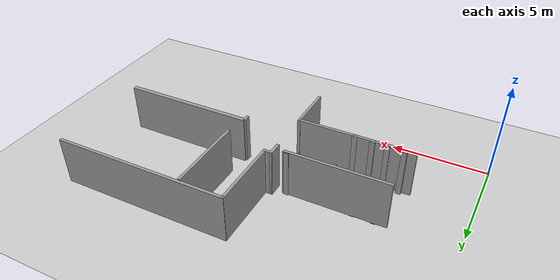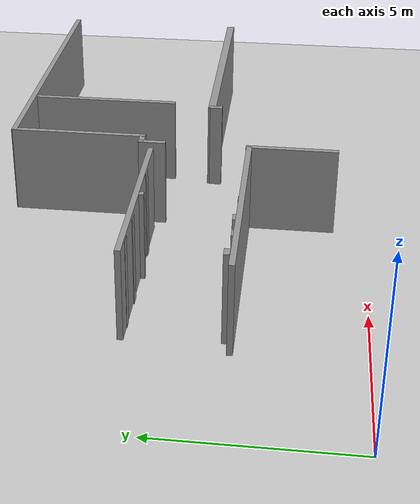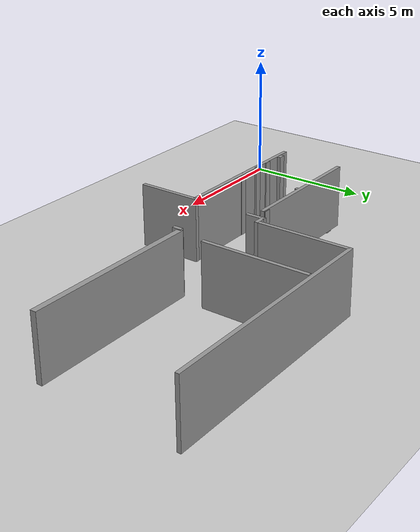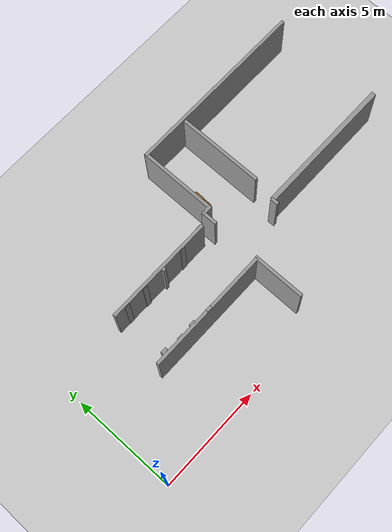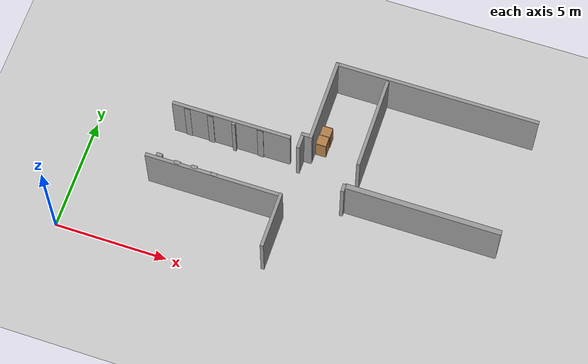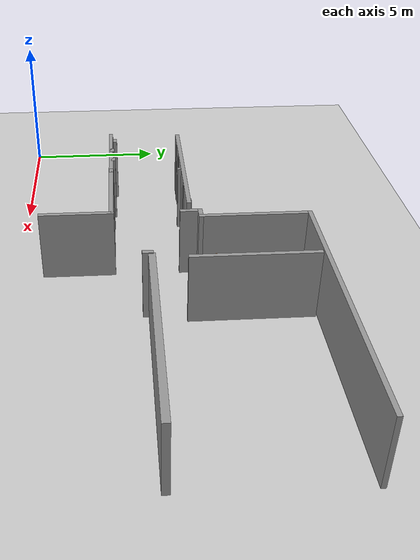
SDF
<sdf version="1.7">
 <world name="default">
  <model name="ground_plane">
   <static>1</static>
   <link name="link">
    <collision name="collision">
     <geometry><plane><normal>0 0 1</normal><size>100 100</size></plane></geometry>
     <surface>
      <contact><collide_bitmask>65535</collide_bitmask></contact>
      <friction><ode><mu>100</mu><mu2>50</mu2></ode></friction>
     </surface>
    </collision>
    <visual name="visual">
     <cast_shadows>0</cast_shadows>
     <geometry><plane><normal>0 0 1</normal><size>100 100</size></plane></geometry>
     <material>
      <script><uri>file://media/materials/scripts/gazebo.material</uri><name>Gazebo/Grey</name></script>
     </material>
    </visual>
   </link>
  </model>
  <model name="cabinet">
   <static>1</static>
   <link name="cabinet_bottom_plate">
    <inertial>
     <pose>0 0 -1 0 -0 0</pose>
     <inertia><ixx>2.05</ixx><ixy>0</ixy><ixz>0</ixz><iyy>2.05</iyy><iyz>0</iyz><izz>2.05</izz></inertia>
     <mass>25</mass>
    </inertial>
    <collision name="cabinet_bottom_plate_geom">
     <pose>0 0 0.01 0 -0 0</pose>
     <geometry><box><size>0.45 0.45 0.02</size></box></geometry>
    </collision>
    <visual name="cabinet_bottom_plate_geom_visual">
     <pose>0 0 0.01 0 -0 0</pose>
     <geometry><box><size>0.45 0.45 0.02</size></box></geometry>
     <material>
      <script><uri>file://media/materials/scripts/gazebo.material</uri><name>Gazebo/Wood</name></script>
     </material>
    </visual>
    <collision name="cabinet_bottom_plate_geom_cabinet_back_plate">
     <pose>0.235 0 0.51 0 -0 0</pose>
     <geometry><box><size>0.02 0.45 1.02</size></box></geometry>
    </collision>
    <visual name="cabinet_bottom_plate_geom_cabinet_back_plate_visual">
     <pose>0.235 0 0.51 0 -0 0</pose>
     <geometry><box><size>0.02 0.45 1.02</size></box></geometry>
     <material>
      <script><uri>file://media/materials/scripts/gazebo.material</uri><name>Gazebo/Wood</name></script>
     </material>
    </visual>
    <collision name="cabinet_bottom_plate_geom_cabinet_left_plate">
     <pose>0 0.235 0.51 0 -0 0</pose>
     <geometry><box><size>0.45 0.02 1.02</size></box></geometry>
    </collision>
    <visual name="cabinet_bottom_plate_geom_cabinet_left_plate_visual">
     <pose>0 0.235 0.51 0 -0 0</pose>
     <geometry><box><size>0.45 0.02 1.02</size></box></geometry>
     <material>
      <script><uri>file://media/materials/scripts/gazebo.material</uri><name>Gazebo/Wood</name></script>
     </material>
    </visual>
    <collision name="cabinet_bottom_plate_geom_cabinet_middle_plate">
     <pose>0 0 0.51 0 -0 0</pose>
     <geometry><box><size>0.45 0.45 0.02</size></box></geometry>
    </collision>
    <visual name="cabinet_bottom_plate_geom_cabinet_middle_plate_visual">
     <pose>0 0 0.51 0 -0 0</pose>
     <geometry><box><size>0.45 0.45 0.02</size></box></geometry>
     <material>
      <script><uri>file://media/materials/scripts/gazebo.material</uri><name>Gazebo/Wood</name></script>
     </material>
    </visual>
    <collision name="cabinet_bottom_plate_geom_cabinet_right_plate">
     <pose>0 -0.235 0.51 0 -0 0</pose>
     <geometry><box><size>0.45 0.02 1.02</size></box></geometry>
    </collision>
    <visual name="cabinet_bottom_plate_geom_cabinet_right_plate_visual">
     <pose>0 -0.235 0.51 0 -0 0</pose>
     <geometry><box><size>0.45 0.02 1.02</size></box></geometry>
     <material>
      <script><uri>file://media/materials/scripts/gazebo.material</uri><name>Gazebo/Wood</name></script>
     </material>
    </visual>
    <collision name="cabinet_bottom_plate_geom_cabinet_top_plate">
     <pose>0 0 1.01 0 -0 0</pose>
     <geometry><box><size>0.45 0.45 0.02</size></box></geometry>
    </collision>
    <visual name="cabinet_bottom_plate_geom_cabinet_top_plate_visual">
     <pose>0 0 1.01 0 -0 0</pose>
     <geometry><box><size>0.45 0.45 0.02</size></box></geometry>
     <material>
      <script><uri>file://media/materials/scripts/gazebo.material</uri><name>Gazebo/Wood</name></script>
     </material>
    </visual>
   </link>
   <pose>9.66101 6.89219 0 0 -0 0</pose>
  </model>
  <model name="cabinet_0">
   <static>1</static>
   <link name="cabinet_bottom_plate">
    <inertial>
     <pose>0 0 -1 0 -0 0</pose>
     <inertia><ixx>2.05</ixx><ixy>0</ixy><ixz>0</ixz><iyy>2.05</iyy><iyz>0</iyz><izz>2.05</izz></inertia>
     <mass>25</mass>
    </inertial>
    <collision name="cabinet_bottom_plate_geom">
     <pose>0 0 0.01 0 -0 0</pose>
     <geometry><box><size>0.45 0.45 0.02</size></box></geometry>
    </collision>
    <visual name="cabinet_bottom_plate_geom_visual">
     <pose>0 0 0.01 0 -0 0</pose>
     <geometry><box><size>0.45 0.45 0.02</size></box></geometry>
     <material>
      <script><uri>file://media/materials/scripts/gazebo.material</uri><name>Gazebo/Wood</name></script>
     </material>
    </visual>
    <collision name="cabinet_bottom_plate_geom_cabinet_back_plate">
     <pose>0.235 0 0.51 0 -0 0</pose>
     <geometry><box><size>0.02 0.45 1.02</size></box></geometry>
    </collision>
    <visual name="cabinet_bottom_plate_geom_cabinet_back_plate_visual">
     <pose>0.235 0 0.51 0 -0 0</pose>
     <geometry><box><size>0.02 0.45 1.02</size></box></geometry>
     <material>
      <script><uri>file://media/materials/scripts/gazebo.material</uri><name>Gazebo/Wood</name></script>
     </material>
    </visual>
    <collision name="cabinet_bottom_plate_geom_cabinet_left_plate">
     <pose>0 0.235 0.51 0 -0 0</pose>
     <geometry><box><size>0.45 0.02 1.02</size></box></geometry>
    </collision>
    <visual name="cabinet_bottom_plate_geom_cabinet_left_plate_visual">
     <pose>0 0.235 0.51 0 -0 0</pose>
     <geometry><box><size>0.45 0.02 1.02</size></box></geometry>
     <material>
      <script><uri>file://media/materials/scripts/gazebo.material</uri><name>Gazebo/Wood</name></script>
     </material>
    </visual>
    <collision name="cabinet_bottom_plate_geom_cabinet_middle_plate">
     <pose>0 0 0.51 0 -0 0</pose>
     <geometry><box><size>0.45 0.45 0.02</size></box></geometry>
    </collision>
    <visual name="cabinet_bottom_plate_geom_cabinet_middle_plate_visual">
     <pose>0 0 0.51 0 -0 0</pose>
     <geometry><box><size>0.45 0.45 0.02</size></box></geometry>
     <material>
      <script><uri>file://media/materials/scripts/gazebo.material</uri><name>Gazebo/Wood</name></script>
     </material>
    </visual>
    <collision name="cabinet_bottom_plate_geom_cabinet_right_plate">
     <pose>0 -0.235 0.51 0 -0 0</pose>
     <geometry><box><size>0.45 0.02 1.02</size></box></geometry>
    </collision>
    <visual name="cabinet_bottom_plate_geom_cabinet_right_plate_visual">
     <pose>0 -0.235 0.51 0 -0 0</pose>
     <geometry><box><size>0.45 0.02 1.02</size></box></geometry>
     <material>
      <script><uri>file://media/materials/scripts/gazebo.material</uri><name>Gazebo/Wood</name></script>
     </material>
    </visual>
    <collision name="cabinet_bottom_plate_geom_cabinet_top_plate">
     <pose>0 0 1.01 0 -0 0</pose>
     <geometry><box><size>0.45 0.45 0.02</size></box></geometry>
    </collision>
    <visual name="cabinet_bottom_plate_geom_cabinet_top_plate_visual">
     <pose>0 0 1.01 0 -0 0</pose>
     <geometry><box><size>0.45 0.45 0.02</size></box></geometry>
     <material>
      <script><uri>file://media/materials/scripts/gazebo.material</uri><name>Gazebo/Wood</name></script>
     </material>
    </visual>
   </link>
   <pose>9.68381 7.3421 0 0 -0 0</pose>
  </model>
  <model name="rastech_map_02">
   <link name="Wall_26">
    <pose>5.28336 2.73832 0 0 -0 1.5708</pose>
    <visual name="Wall_26_Visual">
     <pose>0 0 1.25 0 -0 0</pose>
     <geometry><box><size>2.5 0.15 2.5</size></box></geometry>
     <material>
      <script><uri>file://media/materials/scripts/gazebo.material</uri><name>Gazebo/Grey</name></script>
      <ambient>1 1 1 1</ambient>
      <shader type="pixel"/>
     </material>
     <meta><layer>0</layer></meta>
    </visual>
    <collision name="Wall_26_Collision">
     <pose>0 0 1.25 0 -0 0</pose>
     <geometry><box><size>2.5 0.15 2.5</size></box></geometry>
     <surface>
      <friction>
       <ode><mu>1</mu><mu2>1</mu2><fdir1>0 0 0</fdir1><slip1>0</slip1><slip2>0</slip2></ode>
       <torsional>
        <coefficient>1</coefficient>
        <patch_radius>0</patch_radius>
        <surface_radius>0</surface_radius>
        <use_patch_radius>1</use_patch_radius>
        <ode><slip>0</slip></ode>
       </torsional>
      </friction>
      <bounce><restitution_coefficient>0</restitution_coefficient><threshold>1e+06</threshold></bounce>
      <contact>
       <collide_without_contact>0</collide_without_contact>
       <collide_without_contact_bitmask>1</collide_without_contact_bitmask>
       <collide_bitmask>1</collide_bitmask>
       <ode>
        <soft_cfm>0</soft_cfm>
        <soft_erp>0.2</soft_erp>
        <kp>1e+13</kp>
        <kd>1</kd>
        <max_vel>0.01</max_vel>
        <min_depth>0</min_depth>
       </ode>
       <bullet>
        <split_impulse>1</split_impulse>
        <split_impulse_penetration_threshold>-0.01</split_impulse_penetration_threshold>
        <soft_cfm>0</soft_cfm>
        <soft_erp>0.2</soft_erp>
        <kp>1e+13</kp>
        <kd>1</kd>
       </bullet>
      </contact>
     </surface>
    </collision>
   </link>
   <link name="Wall_27">
    <pose>2.35835 3.91332 0 0 -0 3.14159</pose>
    <inertial>
     <inertia><ixx>0</ixx><ixy>0</ixy><ixz>0</ixz><iyy>0</iyy><iyz>0</iyz><izz>0</izz></inertia>
     <mass>0</mass>
    </inertial>
    <visual name="Wall_27_Visual">
     <pose>0 0 1.25 0 -0 0</pose>
     <geometry><box><size>0.265883 0.15 2.5</size></box></geometry>
     <material>
      <script><uri>file://media/materials/scripts/gazebo.material</uri><name>Gazebo/Grey</name></script>
      <ambient>1 1 1 1</ambient>
      <shader type="pixel"/>
     </material>
     <meta><layer>0</layer></meta>
    </visual>
    <collision name="Wall_27_Collision">
     <pose>0 0 1.25 0 -0 0</pose>
     <geometry><box><size>0.265883 0.15 2.5</size></box></geometry>
     <surface>
      <friction>
       <ode><mu>1</mu><mu2>1</mu2><fdir1>0 0 0</fdir1><slip1>0</slip1><slip2>0</slip2></ode>
       <torsional>
        <coefficient>1</coefficient>
        <patch_radius>0</patch_radius>
        <surface_radius>0</surface_radius>
        <use_patch_radius>1</use_patch_radius>
        <ode><slip>0</slip></ode>
       </torsional>
      </friction>
      <bounce><restitution_coefficient>0</restitution_coefficient><threshold>1e+06</threshold></bounce>
      <contact>
       <collide_without_contact>0</collide_without_contact>
       <collide_without_contact_bitmask>1</collide_without_contact_bitmask>
       <collide_bitmask>1</collide_bitmask>
       <ode>
        <soft_cfm>0</soft_cfm>
        <soft_erp>0.2</soft_erp>
        <kp>1e+13</kp>
        <kd>1</kd>
        <max_vel>0.01</max_vel>
        <min_depth>0</min_depth>
       </ode>
       <bullet>
        <split_impulse>1</split_impulse>
        <split_impulse_penetration_threshold>-0.01</split_impulse_penetration_threshold>
        <soft_cfm>0</soft_cfm>
        <soft_erp>0.2</soft_erp>
        <kp>1e+13</kp>
        <kd>1</kd>
       </bullet>
      </contact>
     </surface>
    </collision>
   </link>
   <link name="Wall_27_clone">
    <pose>0.733131 3.94617 0 0 -0 3.14159</pose>
    <inertial>
     <inertia><ixx>0</ixx><ixy>0</ixy><ixz>0</ixz><iyy>0</iyy><iyz>0</iyz><izz>0</izz></inertia>
     <mass>0</mass>
    </inertial>
    <visual name="Wall_27_Visual">
     <pose>0 0 1.25 0 -0 0</pose>
     <geometry><box><size>0.265883 0.15 2.5</size></box></geometry>
     <material>
      <script><uri>file://media/materials/scripts/gazebo.material</uri><name>Gazebo/Grey</name></script>
      <ambient>1 1 1 1</ambient>
      <shader type="pixel"/>
     </material>
     <meta><layer>0</layer></meta>
    </visual>
    <collision name="Wall_27_Collision">
     <pose>0 0 1.25 0 -0 0</pose>
     <geometry><box><size>0.265883 0.15 2.5</size></box></geometry>
     <surface>
      <friction>
       <ode><mu>1</mu><mu2>1</mu2><fdir1>0 0 0</fdir1><slip1>0</slip1><slip2>0</slip2></ode>
       <torsional>
        <coefficient>1</coefficient>
        <patch_radius>0</patch_radius>
        <surface_radius>0</surface_radius>
        <use_patch_radius>1</use_patch_radius>
        <ode><slip>0</slip></ode>
       </torsional>
      </friction>
      <bounce><restitution_coefficient>0</restitution_coefficient><threshold>1e+06</threshold></bounce>
      <contact>
       <collide_without_contact>0</collide_without_contact>
       <collide_without_contact_bitmask>1</collide_without_contact_bitmask>
       <collide_bitmask>1</collide_bitmask>
       <ode>
        <soft_cfm>0</soft_cfm>
        <soft_erp>0.2</soft_erp>
        <kp>1e+13</kp>
        <kd>1</kd>
        <max_vel>0.01</max_vel>
        <min_depth>0</min_depth>
       </ode>
       <bullet>
        <split_impulse>1</split_impulse>
        <split_impulse_penetration_threshold>-0.01</split_impulse_penetration_threshold>
        <soft_cfm>0</soft_cfm>
        <soft_erp>0.2</soft_erp>
        <kp>1e+13</kp>
        <kd>1</kd>
       </bullet>
      </contact>
     </surface>
    </collision>
   </link>
   <link name="Wall_27_clone_0">
    <pose>2.29874 3.89981 0 0 -0 3.14159</pose>
    <inertial>
     <inertia><ixx>0</ixx><ixy>0</ixy><ixz>0</ixz><iyy>0</iyy><iyz>0</iyz><izz>0</izz></inertia>
     <mass>0</mass>
    </inertial>
    <visual name="Wall_27_Visual">
     <pose>0 0 1.25 0 -0 0</pose>
     <geometry><box><size>5.95009 0.15 2.5</size></box></geometry>
     <material>
      <script><uri>file://media/materials/scripts/gazebo.material</uri><name>Gazebo/Grey</name></script>
      <ambient>1 1 1 1</ambient>
      <shader type="pixel"/>
     </material>
     <meta><layer>0</layer></meta>
    </visual>
    <collision name="Wall_27_Collision">
     <pose>0 0 1.25 0 -0 0</pose>
     <geometry><box><size>5.95009 0.15 2.5</size></box></geometry>
     <surface>
      <friction>
       <ode><mu>1</mu><mu2>1</mu2><fdir1>0 0 0</fdir1><slip1>0</slip1><slip2>0</slip2></ode>
       <torsional>
        <coefficient>1</coefficient>
        <patch_radius>0</patch_radius>
        <surface_radius>0</surface_radius>
        <use_patch_radius>1</use_patch_radius>
        <ode><slip>0</slip></ode>
       </torsional>
      </friction>
      <bounce><restitution_coefficient>0</restitution_coefficient><threshold>1e+06</threshold></bounce>
      <contact>
       <collide_without_contact>0</collide_without_contact>
       <collide_without_contact_bitmask>1</collide_without_contact_bitmask>
       <collide_bitmask>1</collide_bitmask>
       <ode>
        <soft_cfm>0</soft_cfm>
        <soft_erp>0.2</soft_erp>
        <kp>1e+13</kp>
        <kd>1</kd>
        <max_vel>0.01</max_vel>
        <min_depth>0</min_depth>
       </ode>
       <bullet>
        <split_impulse>1</split_impulse>
        <split_impulse_penetration_threshold>-0.01</split_impulse_penetration_threshold>
        <soft_cfm>0</soft_cfm>
        <soft_erp>0.2</soft_erp>
        <kp>1e+13</kp>
        <kd>1</kd>
       </bullet>
      </contact>
     </surface>
    </collision>
   </link>
   <link name="Wall_27_clone_1">
    <pose>1.46486 3.97748 0 0 -0 3.14159</pose>
    <inertial>
     <inertia><ixx>0</ixx><ixy>0</ixy><ixz>0</ixz><iyy>0</iyy><iyz>0</iyz><izz>0</izz></inertia>
     <mass>0</mass>
    </inertial>
    <visual name="Wall_27_Visual">
     <pose>0 0 1.25 0 -0 0</pose>
     <geometry><box><size>0.265883 0.15 2.5</size></box></geometry>
     <material>
      <script><uri>file://media/materials/scripts/gazebo.material</uri><name>Gazebo/Grey</name></script>
      <ambient>1 1 1 1</ambient>
      <shader type="pixel"/>
     </material>
     <meta><layer>0</layer></meta>
    </visual>
    <collision name="Wall_27_Collision">
     <pose>0 0 1.25 0 -0 0</pose>
     <geometry><box><size>0.265883 0.15 2.5</size></box></geometry>
     <surface>
      <friction>
       <ode><mu>1</mu><mu2>1</mu2><fdir1>0 0 0</fdir1><slip1>0</slip1><slip2>0</slip2></ode>
       <torsional>
        <coefficient>1</coefficient>
        <patch_radius>0</patch_radius>
        <surface_radius>0</surface_radius>
        <use_patch_radius>1</use_patch_radius>
        <ode><slip>0</slip></ode>
       </torsional>
      </friction>
      <bounce><restitution_coefficient>0</restitution_coefficient><threshold>1e+06</threshold></bounce>
      <contact>
       <collide_without_contact>0</collide_without_contact>
       <collide_without_contact_bitmask>1</collide_without_contact_bitmask>
       <collide_bitmask>1</collide_bitmask>
       <ode>
        <soft_cfm>0</soft_cfm>
        <soft_erp>0.2</soft_erp>
        <kp>1e+13</kp>
        <kd>1</kd>
        <max_vel>0.01</max_vel>
        <min_depth>0</min_depth>
       </ode>
       <bullet>
        <split_impulse>1</split_impulse>
        <split_impulse_penetration_threshold>-0.01</split_impulse_penetration_threshold>
        <soft_cfm>0</soft_cfm>
        <soft_erp>0.2</soft_erp>
        <kp>1e+13</kp>
        <kd>1</kd>
       </bullet>
      </contact>
     </surface>
    </collision>
   </link>
   <link name="Wall_27_clone_2">
    <pose>-0.109983 4.05501 0 0 -0 3.14159</pose>
    <inertial>
     <inertia><ixx>0</ixx><ixy>0</ixy><ixz>0</ixz><iyy>0</iyy><iyz>0</iyz><izz>0</izz></inertia>
     <mass>0</mass>
    </inertial>
    <visual name="Wall_27_Visual">
     <pose>0 0 1.25 0 -0 0</pose>
     <geometry><box><size>0.265883 0.15 2.5</size></box></geometry>
     <material>
      <script><uri>file://media/materials/scripts/gazebo.material</uri><name>Gazebo/Grey</name></script>
      <ambient>1 1 1 1</ambient>
      <shader type="pixel"/>
     </material>
     <meta><layer>0</layer></meta>
    </visual>
    <collision name="Wall_27_Collision">
     <pose>0 0 1.25 0 -0 0</pose>
     <geometry><box><size>0.265883 0.15 2.5</size></box></geometry>
     <surface>
      <friction>
       <ode><mu>1</mu><mu2>1</mu2><fdir1>0 0 0</fdir1><slip1>0</slip1><slip2>0</slip2></ode>
       <torsional>
        <coefficient>1</coefficient>
        <patch_radius>0</patch_radius>
        <surface_radius>0</surface_radius>
        <use_patch_radius>1</use_patch_radius>
        <ode><slip>0</slip></ode>
       </torsional>
      </friction>
      <bounce><restitution_coefficient>0</restitution_coefficient><threshold>1e+06</threshold></bounce>
      <contact>
       <collide_without_contact>0</collide_without_contact>
       <collide_without_contact_bitmask>1</collide_without_contact_bitmask>
       <collide_bitmask>1</collide_bitmask>
       <ode>
        <soft_cfm>0</soft_cfm>
        <soft_erp>0.2</soft_erp>
        <kp>1e+13</kp>
        <kd>1</kd>
        <max_vel>0.01</max_vel>
        <min_depth>0</min_depth>
       </ode>
       <bullet>
        <split_impulse>1</split_impulse>
        <split_impulse_penetration_threshold>-0.01</split_impulse_penetration_threshold>
        <soft_cfm>0</soft_cfm>
        <soft_erp>0.2</soft_erp>
        <kp>1e+13</kp>
        <kd>1</kd>
       </bullet>
      </contact>
     </surface>
    </collision>
   </link>
   <link name="Wall_27_clone_3">
    <pose>4.66104 6.5577 0 0 -0 3.14159</pose>
    <inertial>
     <inertia><ixx>0</ixx><ixy>0</ixy><ixz>0</ixz><iyy>0</iyy><iyz>0</iyz><izz>0</izz></inertia>
     <mass>0</mass>
    </inertial>
    <visual name="Wall_27_Visual">
     <pose>0 0 1.25 0 -0 0</pose>
     <geometry><box><size>0.265883 0.15 2.5</size></box></geometry>
     <material>
      <script><uri>file://media/materials/scripts/gazebo.material</uri><name>Gazebo/Grey</name></script>
      <ambient>1 1 1 1</ambient>
      <shader type="pixel"/>
     </material>
     <meta><layer>0</layer></meta>
    </visual>
    <collision name="Wall_27_Collision">
     <pose>0 0 1.25 0 -0 0</pose>
     <geometry><box><size>0.265883 0.15 2.5</size></box></geometry>
     <surface>
      <friction>
       <ode><mu>1</mu><mu2>1</mu2><fdir1>0 0 0</fdir1><slip1>0</slip1><slip2>0</slip2></ode>
       <torsional>
        <coefficient>1</coefficient>
        <patch_radius>0</patch_radius>
        <surface_radius>0</surface_radius>
        <use_patch_radius>1</use_patch_radius>
        <ode><slip>0</slip></ode>
       </torsional>
      </friction>
      <bounce><restitution_coefficient>0</restitution_coefficient><threshold>1e+06</threshold></bounce>
      <contact>
       <collide_without_contact>0</collide_without_contact>
       <collide_without_contact_bitmask>1</collide_without_contact_bitmask>
       <collide_bitmask>1</collide_bitmask>
       <ode>
        <soft_cfm>0</soft_cfm>
        <soft_erp>0.2</soft_erp>
        <kp>1e+13</kp>
        <kd>1</kd>
        <max_vel>0.01</max_vel>
        <min_depth>0</min_depth>
       </ode>
       <bullet>
        <split_impulse>1</split_impulse>
        <split_impulse_penetration_threshold>-0.01</split_impulse_penetration_threshold>
        <soft_cfm>0</soft_cfm>
        <soft_erp>0.2</soft_erp>
        <kp>1e+13</kp>
        <kd>1</kd>
       </bullet>
      </contact>
     </surface>
    </collision>
   </link>
   <link name="Wall_27_clone_4">
    <pose>3.52032 6.50896 0 0 -0 3.14159</pose>
    <inertial>
     <inertia><ixx>0</ixx><ixy>0</ixy><ixz>0</ixz><iyy>0</iyy><iyz>0</iyz><izz>0</izz></inertia>
     <mass>0</mass>
    </inertial>
    <visual name="Wall_27_Visual">
     <pose>0 0 1.25 0 -0 0</pose>
     <geometry><box><size>0.265883 0.15 2.5</size></box></geometry>
     <material>
      <script><uri>file://media/materials/scripts/gazebo.material</uri><name>Gazebo/Grey</name></script>
      <ambient>1 1 1 1</ambient>
      <shader type="pixel"/>
     </material>
     <meta><layer>0</layer></meta>
    </visual>
    <collision name="Wall_27_Collision">
     <pose>0 0 1.25 0 -0 0</pose>
     <geometry><box><size>0.265883 0.15 2.5</size></box></geometry>
     <surface>
      <friction>
       <ode><mu>1</mu><mu2>1</mu2><fdir1>0 0 0</fdir1><slip1>0</slip1><slip2>0</slip2></ode>
       <torsional>
        <coefficient>1</coefficient>
        <patch_radius>0</patch_radius>
        <surface_radius>0</surface_radius>
        <use_patch_radius>1</use_patch_radius>
        <ode><slip>0</slip></ode>
       </torsional>
      </friction>
      <bounce><restitution_coefficient>0</restitution_coefficient><threshold>1e+06</threshold></bounce>
      <contact>
       <collide_without_contact>0</collide_without_contact>
       <collide_without_contact_bitmask>1</collide_without_contact_bitmask>
       <collide_bitmask>1</collide_bitmask>
       <ode>
        <soft_cfm>0</soft_cfm>
        <soft_erp>0.2</soft_erp>
        <kp>1e+13</kp>
        <kd>1</kd>
        <max_vel>0.01</max_vel>
        <min_depth>0</min_depth>
       </ode>
       <bullet>
        <split_impulse>1</split_impulse>
        <split_impulse_penetration_threshold>-0.01</split_impulse_penetration_threshold>
        <soft_cfm>0</soft_cfm>
        <soft_erp>0.2</soft_erp>
        <kp>1e+13</kp>
        <kd>1</kd>
       </bullet>
      </contact>
     </surface>
    </collision>
   </link>
   <link name="Wall_27_clone_5">
    <pose>1.28739 6.51309 -0.061813 0 -0 3.14159</pose>
    <inertial>
     <inertia><ixx>0</ixx><ixy>0</ixy><ixz>0</ixz><iyy>0</iyy><iyz>0</iyz><izz>0</izz></inertia>
     <mass>0</mass>
    </inertial>
    <visual name="Wall_27_Visual">
     <pose>0 0 1.25 0 -0 0</pose>
     <geometry><box><size>0.265883 0.15 2.5</size></box></geometry>
     <material>
      <script><uri>file://media/materials/scripts/gazebo.material</uri><name>Gazebo/Grey</name></script>
      <ambient>1 1 1 1</ambient>
      <shader type="pixel"/>
     </material>
     <meta><layer>0</layer></meta>
    </visual>
    <collision name="Wall_27_Collision">
     <pose>0 0 1.25 0 -0 0</pose>
     <geometry><box><size>0.265883 0.15 2.5</size></box></geometry>
     <surface>
      <friction>
       <ode><mu>1</mu><mu2>1</mu2><fdir1>0 0 0</fdir1><slip1>0</slip1><slip2>0</slip2></ode>
       <torsional>
        <coefficient>1</coefficient>
        <patch_radius>0</patch_radius>
        <surface_radius>0</surface_radius>
        <use_patch_radius>1</use_patch_radius>
        <ode><slip>0</slip></ode>
       </torsional>
      </friction>
      <bounce><restitution_coefficient>0</restitution_coefficient><threshold>1e+06</threshold></bounce>
      <contact>
       <collide_without_contact>0</collide_without_contact>
       <collide_without_contact_bitmask>1</collide_without_contact_bitmask>
       <collide_bitmask>1</collide_bitmask>
       <ode>
        <soft_cfm>0</soft_cfm>
        <soft_erp>0.2</soft_erp>
        <kp>1e+13</kp>
        <kd>1</kd>
        <max_vel>0.01</max_vel>
        <min_depth>0</min_depth>
       </ode>
       <bullet>
        <split_impulse>1</split_impulse>
        <split_impulse_penetration_threshold>-0.01</split_impulse_penetration_threshold>
        <soft_cfm>0</soft_cfm>
        <soft_erp>0.2</soft_erp>
        <kp>1e+13</kp>
        <kd>1</kd>
       </bullet>
      </contact>
     </surface>
    </collision>
   </link>
   <link name="Wall_27_clone_6">
    <pose>0.252321 6.52873 -0.056288 0 -0 3.14159</pose>
    <inertial>
     <inertia><ixx>0</ixx><ixy>0</ixy><ixz>0</ixz><iyy>0</iyy><iyz>0</iyz><izz>0</izz></inertia>
     <mass>0</mass>
    </inertial>
    <visual name="Wall_27_Visual">
     <pose>0 0 1.25 0 -0 0</pose>
     <geometry><box><size>0.265883 0.15 2.5</size></box></geometry>
     <material>
      <script><uri>file://media/materials/scripts/gazebo.material</uri><name>Gazebo/Grey</name></script>
      <ambient>1 1 1 1</ambient>
      <shader type="pixel"/>
     </material>
     <meta><layer>0</layer></meta>
    </visual>
    <collision name="Wall_27_Collision">
     <pose>0 0 1.25 0 -0 0</pose>
     <geometry><box><size>0.265883 0.15 2.5</size></box></geometry>
     <surface>
      <friction>
       <ode><mu>1</mu><mu2>1</mu2><fdir1>0 0 0</fdir1><slip1>0</slip1><slip2>0</slip2></ode>
       <torsional>
        <coefficient>1</coefficient>
        <patch_radius>0</patch_radius>
        <surface_radius>0</surface_radius>
        <use_patch_radius>1</use_patch_radius>
        <ode><slip>0</slip></ode>
       </torsional>
      </friction>
      <bounce><restitution_coefficient>0</restitution_coefficient><threshold>1e+06</threshold></bounce>
      <contact>
       <collide_without_contact>0</collide_without_contact>
       <collide_without_contact_bitmask>1</collide_without_contact_bitmask>
       <collide_bitmask>1</collide_bitmask>
       <ode>
        <soft_cfm>0</soft_cfm>
        <soft_erp>0.2</soft_erp>
        <kp>1e+13</kp>
        <kd>1</kd>
        <max_vel>0.01</max_vel>
        <min_depth>0</min_depth>
       </ode>
       <bullet>
        <split_impulse>1</split_impulse>
        <split_impulse_penetration_threshold>-0.01</split_impulse_penetration_threshold>
        <soft_cfm>0</soft_cfm>
        <soft_erp>0.2</soft_erp>
        <kp>1e+13</kp>
        <kd>1</kd>
       </bullet>
      </contact>
     </surface>
    </collision>
   </link>
   <link name="Wall_27_clone_7">
    <pose>2.21057 6.53365 0.027592 0 -0 3.14159</pose>
    <inertial>
     <inertia><ixx>0</ixx><ixy>0</ixy><ixz>0</ixz><iyy>0</iyy><iyz>0</iyz><izz>0</izz></inertia>
     <mass>0</mass>
    </inertial>
    <visual name="Wall_27_Visual">
     <pose>0 0 1.25 0 -0 0</pose>
     <geometry><box><size>5.26523 0.15 2.5</size></box></geometry>
     <material>
      <script><uri>file://media/materials/scripts/gazebo.material</uri><name>Gazebo/Grey</name></script>
      <ambient>1 1 1 1</ambient>
      <shader type="pixel"/>
     </material>
     <meta><layer>0</layer></meta>
    </visual>
    <collision name="Wall_27_Collision">
     <pose>0 0 1.25 0 -0 0</pose>
     <geometry><box><size>5.26523 0.15 2.5</size></box></geometry>
     <surface>
      <friction>
       <ode><mu>1</mu><mu2>1</mu2><fdir1>0 0 0</fdir1><slip1>0</slip1><slip2>0</slip2></ode>
       <torsional>
        <coefficient>1</coefficient>
        <patch_radius>0</patch_radius>
        <surface_radius>0</surface_radius>
        <use_patch_radius>1</use_patch_radius>
        <ode><slip>0</slip></ode>
       </torsional>
      </friction>
      <bounce><restitution_coefficient>0</restitution_coefficient><threshold>1e+06</threshold></bounce>
      <contact>
       <collide_without_contact>0</collide_without_contact>
       <collide_without_contact_bitmask>1</collide_without_contact_bitmask>
       <collide_bitmask>1</collide_bitmask>
       <ode>
        <soft_cfm>0</soft_cfm>
        <soft_erp>0.2</soft_erp>
        <kp>1e+13</kp>
        <kd>1</kd>
        <max_vel>0.01</max_vel>
        <min_depth>0</min_depth>
       </ode>
       <bullet>
        <split_impulse>1</split_impulse>
        <split_impulse_penetration_threshold>-0.01</split_impulse_penetration_threshold>
        <soft_cfm>0</soft_cfm>
        <soft_erp>0.2</soft_erp>
        <kp>1e+13</kp>
        <kd>1</kd>
       </bullet>
      </contact>
     </surface>
    </collision>
   </link>
   <link name="Wall_30">
    <pose>2.35835 6.41672 0.004922 0 -0 0</pose>
    <inertial>
     <inertia><ixx>0</ixx><ixy>0</ixy><ixz>0</ixz><iyy>0</iyy><iyz>0</iyz><izz>0</izz></inertia>
     <mass>0</mass>
    </inertial>
    <visual name="Wall_30_Visual">
     <pose>0 0 1.25 0 -0 0</pose>
     <geometry><box><size>0.151935 0.15 2.5</size></box></geometry>
     <material>
      <script><uri>file://media/materials/scripts/gazebo.material</uri><name>Gazebo/Grey</name></script>
      <ambient>1 1 1 1</ambient>
      <shader type="pixel"/>
     </material>
     <meta><layer>0</layer></meta>
    </visual>
    <collision name="Wall_30_Collision">
     <pose>0 0 1.25 0 -0 0</pose>
     <geometry><box><size>0.151935 0.15 2.5</size></box></geometry>
     <surface>
      <friction>
       <ode><mu>1</mu><mu2>1</mu2><fdir1>0 0 0</fdir1><slip1>0</slip1><slip2>0</slip2></ode>
       <torsional>
        <coefficient>1</coefficient>
        <patch_radius>0</patch_radius>
        <surface_radius>0</surface_radius>
        <use_patch_radius>1</use_patch_radius>
        <ode><slip>0</slip></ode>
       </torsional>
      </friction>
      <bounce><restitution_coefficient>0</restitution_coefficient><threshold>1e+06</threshold></bounce>
      <contact>
       <collide_without_contact>0</collide_without_contact>
       <collide_without_contact_bitmask>1</collide_without_contact_bitmask>
       <collide_bitmask>1</collide_bitmask>
       <ode>
        <soft_cfm>0</soft_cfm>
        <soft_erp>0.2</soft_erp>
        <kp>1e+13</kp>
        <kd>1</kd>
        <max_vel>0.01</max_vel>
        <min_depth>0</min_depth>
       </ode>
       <bullet>
        <split_impulse>1</split_impulse>
        <split_impulse_penetration_threshold>-0.01</split_impulse_penetration_threshold>
        <soft_cfm>0</soft_cfm>
        <soft_erp>0.2</soft_erp>
        <kp>1e+13</kp>
        <kd>1</kd>
       </bullet>
      </contact>
     </surface>
    </collision>
   </link>
   <link name="Wall_31">
    <pose>5.28336 6.56332 0 0 -0 1.5708</pose>
    <visual name="Wall_31_Visual">
     <pose>0 0 1.25 0 -0 0</pose>
     <geometry><box><size>0.75 0.15 2.5</size></box></geometry>
     <material>
      <script><uri>file://media/materials/scripts/gazebo.material</uri><name>Gazebo/Grey</name></script>
      <ambient>1 1 1 1</ambient>
      <shader type="pixel"/>
     </material>
     <meta><layer>0</layer></meta>
    </visual>
    <collision name="Wall_31_Collision">
     <pose>0 0 1.25 0 -0 0</pose>
     <geometry><box><size>0.75 0.15 2.5</size></box></geometry>
     <surface>
      <friction>
       <ode><mu>1</mu><mu2>1</mu2><fdir1>0 0 0</fdir1><slip1>0</slip1><slip2>0</slip2></ode>
       <torsional>
        <coefficient>1</coefficient>
        <patch_radius>0</patch_radius>
        <surface_radius>0</surface_radius>
        <use_patch_radius>1</use_patch_radius>
        <ode><slip>0</slip></ode>
       </torsional>
      </friction>
      <bounce><restitution_coefficient>0</restitution_coefficient><threshold>1e+06</threshold></bounce>
      <contact>
       <collide_without_contact>0</collide_without_contact>
       <collide_without_contact_bitmask>1</collide_without_contact_bitmask>
       <collide_bitmask>1</collide_bitmask>
       <ode>
        <soft_cfm>0</soft_cfm>
        <soft_erp>0.2</soft_erp>
        <kp>1e+13</kp>
        <kd>1</kd>
        <max_vel>0.01</max_vel>
        <min_depth>0</min_depth>
       </ode>
       <bullet>
        <split_impulse>1</split_impulse>
        <split_impulse_penetration_threshold>-0.01</split_impulse_penetration_threshold>
        <soft_cfm>0</soft_cfm>
        <soft_erp>0.2</soft_erp>
        <kp>1e+13</kp>
        <kd>1</kd>
       </bullet>
      </contact>
     </surface>
    </collision>
   </link>
   <link name="Wall_32">
    <pose>5.45836 6.86332 0 0 -0 0</pose>
    <visual name="Wall_32_Visual">
     <pose>0 0 1.25 0 -0 0</pose>
     <geometry><box><size>0.5 0.15 2.5</size></box></geometry>
     <material>
      <script><uri>file://media/materials/scripts/gazebo.material</uri><name>Gazebo/Grey</name></script>
      <ambient>1 1 1 1</ambient>
      <shader type="pixel"/>
     </material>
     <meta><layer>0</layer></meta>
    </visual>
    <collision name="Wall_32_Collision">
     <pose>0 0 1.25 0 -0 0</pose>
     <geometry><box><size>0.5 0.15 2.5</size></box></geometry>
     <surface>
      <friction>
       <ode><mu>1</mu><mu2>1</mu2><fdir1>0 0 0</fdir1><slip1>0</slip1><slip2>0</slip2></ode>
       <torsional>
        <coefficient>1</coefficient>
        <patch_radius>0</patch_radius>
        <surface_radius>0</surface_radius>
        <use_patch_radius>1</use_patch_radius>
        <ode><slip>0</slip></ode>
       </torsional>
      </friction>
      <bounce><restitution_coefficient>0</restitution_coefficient><threshold>1e+06</threshold></bounce>
      <contact>
       <collide_without_contact>0</collide_without_contact>
       <collide_without_contact_bitmask>1</collide_without_contact_bitmask>
       <collide_bitmask>1</collide_bitmask>
       <ode>
        <soft_cfm>0</soft_cfm>
        <soft_erp>0.2</soft_erp>
        <kp>1e+13</kp>
        <kd>1</kd>
        <max_vel>0.01</max_vel>
        <min_depth>0</min_depth>
       </ode>
       <bullet>
        <split_impulse>1</split_impulse>
        <split_impulse_penetration_threshold>-0.01</split_impulse_penetration_threshold>
        <soft_cfm>0</soft_cfm>
        <soft_erp>0.2</soft_erp>
        <kp>1e+13</kp>
        <kd>1</kd>
       </bullet>
      </contact>
     </surface>
    </collision>
   </link>
   <link name="Wall_33">
    <pose>5.63335 8.67196 0 0 -0 1.5708</pose>
    <visual name="Wall_33_Visual">
     <pose>0 0 1.25 0 -0 0</pose>
     <geometry><box><size>3.76727 0.15 2.5</size></box></geometry>
     <material>
      <script><uri>file://media/materials/scripts/gazebo.material</uri><name>Gazebo/Grey</name></script>
      <ambient>1 1 1 1</ambient>
      <shader type="pixel"/>
     </material>
     <meta><layer>0</layer></meta>
    </visual>
    <collision name="Wall_33_Collision">
     <pose>0 0 1.25 0 -0 0</pose>
     <geometry><box><size>3.76727 0.15 2.5</size></box></geometry>
     <surface>
      <friction>
       <ode><mu>1</mu><mu2>1</mu2><fdir1>0 0 0</fdir1><slip1>0</slip1><slip2>0</slip2></ode>
       <torsional>
        <coefficient>1</coefficient>
        <patch_radius>0</patch_radius>
        <surface_radius>0</surface_radius>
        <use_patch_radius>1</use_patch_radius>
        <ode><slip>0</slip></ode>
       </torsional>
      </friction>
      <bounce><restitution_coefficient>0</restitution_coefficient><threshold>1e+06</threshold></bounce>
      <contact>
       <collide_without_contact>0</collide_without_contact>
       <collide_without_contact_bitmask>1</collide_without_contact_bitmask>
       <collide_bitmask>1</collide_bitmask>
       <ode>
        <soft_cfm>0</soft_cfm>
        <soft_erp>0.2</soft_erp>
        <kp>1e+13</kp>
        <kd>1</kd>
        <max_vel>0.01</max_vel>
        <min_depth>0</min_depth>
       </ode>
       <bullet>
        <split_impulse>1</split_impulse>
        <split_impulse_penetration_threshold>-0.01</split_impulse_penetration_threshold>
        <soft_cfm>0</soft_cfm>
        <soft_erp>0.2</soft_erp>
        <kp>1e+13</kp>
        <kd>1</kd>
       </bullet>
      </contact>
     </surface>
    </collision>
   </link>
   <link name="Wall_34">
    <pose>10.0584 10.5007 0 0 -0 0</pose>
    <visual name="Wall_34_Visual">
     <pose>0 0 1.25 0 -0 0</pose>
     <geometry><box><size>9 0.15 2.5</size></box></geometry>
     <material>
      <script><uri>file://media/materials/scripts/gazebo.material</uri><name>Gazebo/Grey</name></script>
      <ambient>1 1 1 1</ambient>
      <shader type="pixel"/>
     </material>
     <meta><layer>0</layer></meta>
    </visual>
    <collision name="Wall_34_Collision">
     <pose>0 0 1.25 0 -0 0</pose>
     <geometry><box><size>9 0.15 2.5</size></box></geometry>
     <surface>
      <friction>
       <ode><mu>1</mu><mu2>1</mu2><fdir1>0 0 0</fdir1><slip1>0</slip1><slip2>0</slip2></ode>
       <torsional>
        <coefficient>1</coefficient>
        <patch_radius>0</patch_radius>
        <surface_radius>0</surface_radius>
        <use_patch_radius>1</use_patch_radius>
        <ode><slip>0</slip></ode>
       </torsional>
      </friction>
      <bounce><restitution_coefficient>0</restitution_coefficient><threshold>1e+06</threshold></bounce>
      <contact>
       <collide_without_contact>0</collide_without_contact>
       <collide_without_contact_bitmask>1</collide_without_contact_bitmask>
       <collide_bitmask>1</collide_bitmask>
       <ode>
        <soft_cfm>0</soft_cfm>
        <soft_erp>0.2</soft_erp>
        <kp>1e+13</kp>
        <kd>1</kd>
        <max_vel>0.01</max_vel>
        <min_depth>0</min_depth>
       </ode>
       <bullet>
        <split_impulse>1</split_impulse>
        <split_impulse_penetration_threshold>-0.01</split_impulse_penetration_threshold>
        <soft_cfm>0</soft_cfm>
        <soft_erp>0.2</soft_erp>
        <kp>1e+13</kp>
        <kd>1</kd>
       </bullet>
      </contact>
     </surface>
    </collision>
   </link>
   <link name="Wall_38">
    <pose>11.0584 5.13921 0 0 -0 3.14159</pose>
    <inertial>
     <inertia><ixx>0</ixx><ixy>0</ixy><ixz>0</ixz><iyy>0</iyy><iyz>0</iyz><izz>0</izz></inertia>
     <mass>0</mass>
    </inertial>
    <visual name="Wall_38_Visual">
     <pose>0 0 1.25 0 -0 0</pose>
     <geometry><box><size>6.75642 0.224944 2.5</size></box></geometry>
     <material>
      <script><uri>file://media/materials/scripts/gazebo.material</uri><name>Gazebo/Grey</name></script>
      <ambient>1 1 1 1</ambient>
      <shader type="pixel"/>
     </material>
     <meta><layer>0</layer></meta>
    </visual>
    <collision name="Wall_38_Collision">
     <pose>0 0 1.25 0 -0 0</pose>
     <geometry><box><size>6.75642 0.224944 2.5</size></box></geometry>
     <surface>
      <friction>
       <ode><mu>1</mu><mu2>1</mu2><fdir1>0 0 0</fdir1><slip1>0</slip1><slip2>0</slip2></ode>
       <torsional>
        <coefficient>1</coefficient>
        <patch_radius>0</patch_radius>
        <surface_radius>0</surface_radius>
        <use_patch_radius>1</use_patch_radius>
        <ode><slip>0</slip></ode>
       </torsional>
      </friction>
      <bounce><restitution_coefficient>0</restitution_coefficient><threshold>1e+06</threshold></bounce>
      <contact>
       <collide_without_contact>0</collide_without_contact>
       <collide_without_contact_bitmask>1</collide_without_contact_bitmask>
       <collide_bitmask>1</collide_bitmask>
       <ode>
        <soft_cfm>0</soft_cfm>
        <soft_erp>0.2</soft_erp>
        <kp>1e+13</kp>
        <kd>1</kd>
        <max_vel>0.01</max_vel>
        <min_depth>0</min_depth>
       </ode>
       <bullet>
        <split_impulse>1</split_impulse>
        <split_impulse_penetration_threshold>-0.01</split_impulse_penetration_threshold>
        <soft_cfm>0</soft_cfm>
        <soft_erp>0.2</soft_erp>
        <kp>1e+13</kp>
        <kd>1</kd>
       </bullet>
      </contact>
     </surface>
    </collision>
   </link>
   <link name="Wall_44">
    <pose>7.91556 8.31434 0 0 -0 1.5708</pose>
    <inertial>
     <inertia><ixx>0</ixx><ixy>0</ixy><ixz>0</ixz><iyy>0</iyy><iyz>0</iyz><izz>0</izz></inertia>
     <mass>0</mass>
    </inertial>
    <visual name="Wall_44_Visual">
     <pose>0 0 1.25 0 -0 0</pose>
     <geometry><box><size>4.13893 0.15 2.5</size></box></geometry>
     <material>
      <script><uri>file://media/materials/scripts/gazebo.material</uri><name>Gazebo/Grey</name></script>
      <ambient>1 1 1 1</ambient>
      <shader type="pixel"/>
     </material>
     <meta><layer>0</layer></meta>
    </visual>
    <collision name="Wall_44_Collision">
     <pose>0 0 1.25 0 -0 0</pose>
     <geometry><box><size>4.13893 0.15 2.5</size></box></geometry>
     <surface>
      <friction>
       <ode><mu>1</mu><mu2>1</mu2><fdir1>0 0 0</fdir1><slip1>0</slip1><slip2>0</slip2></ode>
       <torsional>
        <coefficient>1</coefficient>
        <patch_radius>0</patch_radius>
        <surface_radius>0</surface_radius>
        <use_patch_radius>1</use_patch_radius>
        <ode><slip>0</slip></ode>
       </torsional>
      </friction>
      <bounce><restitution_coefficient>0</restitution_coefficient><threshold>1e+06</threshold></bounce>
      <contact>
       <collide_without_contact>0</collide_without_contact>
       <collide_without_contact_bitmask>1</collide_without_contact_bitmask>
       <collide_bitmask>1</collide_bitmask>
       <ode>
        <soft_cfm>0</soft_cfm>
        <soft_erp>0.2</soft_erp>
        <kp>1e+13</kp>
        <kd>1</kd>
        <max_vel>0.01</max_vel>
        <min_depth>0</min_depth>
       </ode>
       <bullet>
        <split_impulse>1</split_impulse>
        <split_impulse_penetration_threshold>-0.01</split_impulse_penetration_threshold>
        <soft_cfm>0</soft_cfm>
        <soft_erp>0.2</soft_erp>
        <kp>1e+13</kp>
        <kd>1</kd>
       </bullet>
      </contact>
     </surface>
    </collision>
   </link>
   <link name="Wall_46">
    <pose>7.66426 5.01472 0.035868 0 0 -1.5708</pose>
    <inertial>
     <inertia><ixx>0</ixx><ixy>0</ixy><ixz>0</ixz><iyy>0</iyy><iyz>0</iyz><izz>0</izz></inertia>
     <mass>0</mass>
    </inertial>
    <visual name="Wall_46_Visual">
     <pose>0 0 1.25 0 -0 0</pose>
     <geometry><box><size>0.351668 0.15 2.5</size></box></geometry>
     <material>
      <script><uri>file://media/materials/scripts/gazebo.material</uri><name>Gazebo/Grey</name></script>
      <ambient>1 1 1 1</ambient>
      <shader type="pixel"/>
     </material>
     <meta><layer>0</layer></meta>
    </visual>
    <collision name="Wall_46_Collision">
     <pose>0 0 1.25 0 -0 0</pose>
     <geometry><box><size>0.351668 0.15 2.5</size></box></geometry>
     <surface>
      <friction>
       <ode><mu>1</mu><mu2>1</mu2><fdir1>0 0 0</fdir1><slip1>0</slip1><slip2>0</slip2></ode>
       <torsional>
        <coefficient>1</coefficient>
        <patch_radius>0</patch_radius>
        <surface_radius>0</surface_radius>
        <use_patch_radius>1</use_patch_radius>
        <ode><slip>0</slip></ode>
       </torsional>
      </friction>
      <bounce><restitution_coefficient>0</restitution_coefficient><threshold>1e+06</threshold></bounce>
      <contact>
       <collide_without_contact>0</collide_without_contact>
       <collide_without_contact_bitmask>1</collide_without_contact_bitmask>
       <collide_bitmask>1</collide_bitmask>
       <ode>
        <soft_cfm>0</soft_cfm>
        <soft_erp>0.2</soft_erp>
        <kp>1e+13</kp>
        <kd>1</kd>
        <max_vel>0.01</max_vel>
        <min_depth>0</min_depth>
       </ode>
       <bullet>
        <split_impulse>1</split_impulse>
        <split_impulse_penetration_threshold>-0.01</split_impulse_penetration_threshold>
        <soft_cfm>0</soft_cfm>
        <soft_erp>0.2</soft_erp>
        <kp>1e+13</kp>
        <kd>1</kd>
       </bullet>
      </contact>
     </surface>
    </collision>
   </link>
   <static>1</static>
   <pose>3.70595 -0.630359 0 0 -0 0</pose>
  </model>
 </world>
</sdf>
